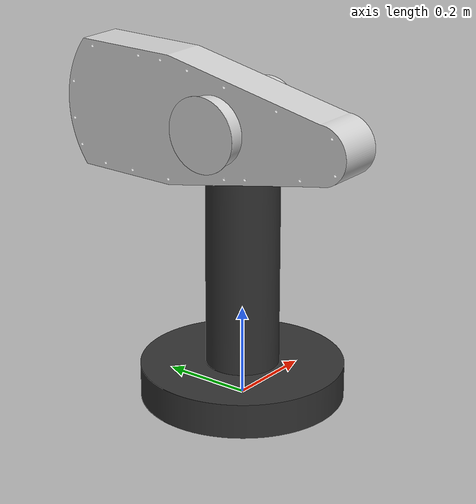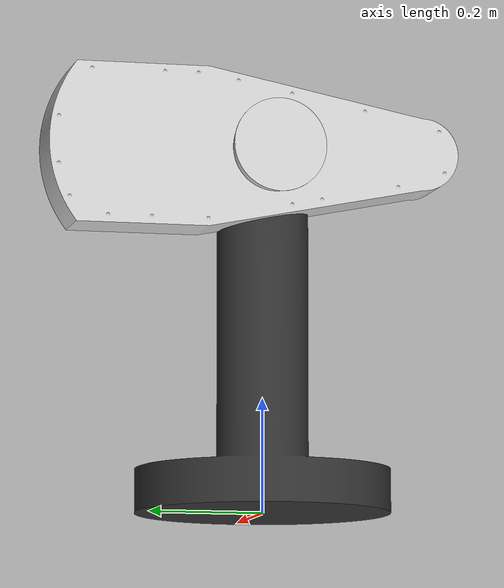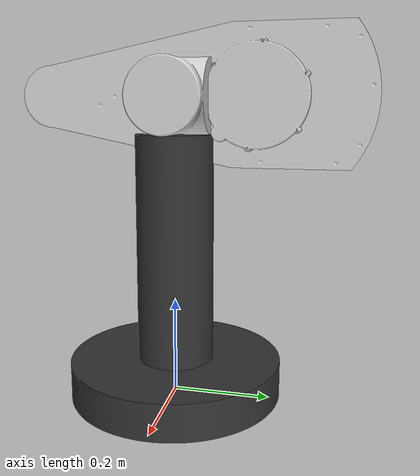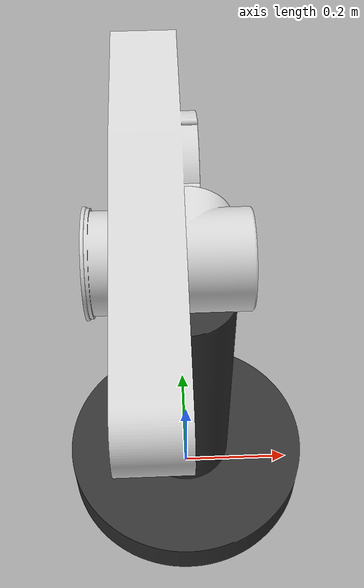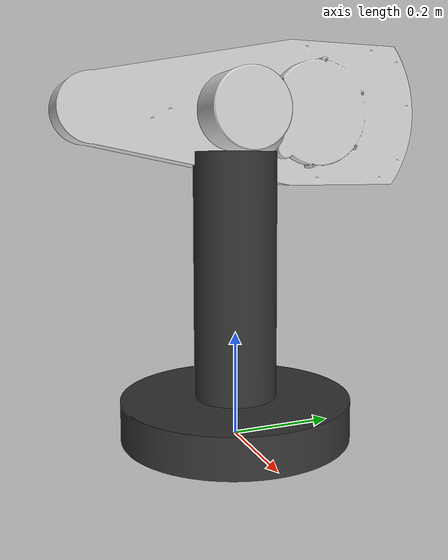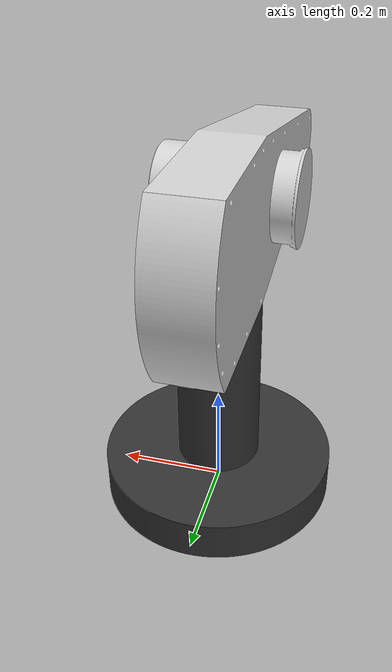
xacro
<?xml version="1.0"?>

<!-- UNIMATE Puma 560 Manipulator -->
<robot name="puma560" xmlns:xacro="http://www.ros.org/wiki/xacro">

  <!-- Constants for robot dimensions -->
  <xacro:property name="Pi" value="${3.1415926535897931}"/>

  <!-- Geometric parameters for base -->
  <xacro:property name="offset_z_base" value="${0.54864}"/>
  <xacro:property name="offset_z_link_1" value="${0.07493}"/>
  <xacro:property name="offset_y_link_2" value="${0.14224 + 0.0254}"/>

  <!-- Inertia parameters
  mass and center of mass (com)
  inertia_diagonal defined as [Ixx Iyy Izz]
  inertia_off_diagonal defined as [Ixy Ixz Iyz]
-->
<xacro:macro name="general_inertia_definition" params="mass com inertia_diagonal inertia_off_diagonal">
  <inertial>
    <origin xyz="${com[0]} ${com[1]} ${com[2]}" rpy="${com[3]} ${com[4]} ${com[5]}"/>
    <mass value="${mass}"/>
    <inertia
      ixx="${inertia_diagonal[0]}"  ixy="${inertia_off_diagonal[0]}" ixz="${inertia_off_diagonal[1]}"
      iyy="${inertia_diagonal[1]}"  iyz="${inertia_off_diagonal[2]}"
      izz="${inertia_diagonal[2]}"
      />
    </inertial>
  </xacro:macro>

  <!-- Import Rviz colors -->
  <xacro:include filename="$(find puma560_description)/urdf/materials.xacro" />

  <!-- Import all Gazebo-customization elements, including Gazebo colors -->
  <xacro:include filename="$(find puma560_description)/urdf/puma560.gazebo" />

  <!-- Link definitions -->
  <link name="world"/>

  <joint name="world" type="fixed">
    <parent link="world"/>
    <child link="puma_base"/>
    <origin xyz="0 0 ${offset_z_base}" rpy="0 0 0" />
    <axis xyz="0 0 1" />
  </joint>

  <link name="puma_base">

    <visual>
      <origin xyz="0 0 0" rpy="0 0 0" />
      <geometry>
        <mesh filename="package://puma560_description/meshes/puma_base.stl" />
      </geometry>
      <material name="grey"/>
    </visual>

    <collision>
      <origin xyz="0 0 0" rpy="0 0 0" />
      <geometry>
        <mesh filename="package://puma560_description/meshes/puma_base_collision.stl" />
      </geometry>
    </collision>

    <xacro:general_inertia_definition
      mass="42.62416"
      com="${[-0.000000, 0.021960, -0.356146, 0, 0, 0]}"
      inertia_diagonal="${[1.48565, 1.36144, 0.43392]}"
      inertia_off_diagonal="${[0, 0, 0.05984]}"
      />

    </link>

    <joint name="link_1" type="continuous">
      <parent link="puma_base"/>
      <child link="puma_link_1"/>
      <origin xyz="0 0 ${offset_z_link_1}" rpy="0 0 0" />
      <axis xyz="0 0 1" />
    </joint>

    <link name="puma_link_1">

      <visual>
        <origin xyz="0 0 0" rpy="0 0 0" />
        <geometry>
          <mesh filename="package://puma560_description/meshes/puma_link_1.stl" />
        </geometry>
        <material name="metal"/>
      </visual>

      <collision>
        <origin xyz="0 0 0" rpy="0 0 0" />
        <geometry>
          <mesh filename="package://puma560_description/meshes/puma_link_1_collision.stl" />
        </geometry>
      </collision>

    <xacro:general_inertia_definition
      mass="11.97216"
      com="${[-0.000000, 0.022503, -0.002794, 0, 0, 0]}"
      inertia_diagonal="${[0.07379, 0.03595, 0.07334]}"
      inertia_off_diagonal="${[0, 0, -0.00075]}"
      />

    </link>

    <joint name="link_2" type="continuous">
      <parent link="puma_link_1"/>
      <child link="puma_link_2"/>
      <origin xyz="0 ${offset_y_link_2} 0" rpy="${Pi/2} 0 0" />
      <axis xyz="0 0 1" />
    </joint>

    <link name="puma_link_2">

      <visual>
        <origin xyz="0 0 0" rpy="0 0 0" />
        <geometry>
          <mesh filename="package://puma560_description/meshes/puma_link_2.stl" />
        </geometry>
        <material name="metal"/>
      </visual>

      <collision>
        <origin xyz="0 0 0" rpy="0 0 0" />
        <geometry>
          <mesh filename="package://puma560_description/meshes/puma_link_2_collision.stl" />
        </geometry>
      </collision>

    <xacro:general_inertia_definition
      mass="11.97216"
      com="${[-0.000000, 0.022503, -0.002794, 0, 0, 0]}"
      inertia_diagonal="${[0.07379, 0.03595, 0.07334]}"
      inertia_off_diagonal="${[0, 0, -0.00075]}"
      />

    </link>

  </robot>

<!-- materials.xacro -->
<robot>

	<material name="black">
		<color rgba="0.0 0.0 0.0 1.0"/>
	</material>

	<material name="blue">
		<color rgba="0.0 0.0 0.8 1.0"/>
	</material>

	<material name="green">
		<color rgba="0.0 0.8 0.0 1.0"/>
	</material>

	<material name="grey">
		<color rgba="0.2 0.2 0.2 1.0"/>
	</material>

	<material name="red">
		<color rgba="0.8 0.0 0.0 1.0"/>
	</material>

	<material name="red_transparent">
		<color rgba="0.8 0.0 0.0 0.5"/>
	</material>

	<material name="white">
		<color rgba="1.0 1.0 1.0 1.0"/>
	</material>

	<material name="orange">
		<color rgba="${255/255} ${108/255} ${10/255} 1.0"/>
	</material>

	<material name="brown">
		<color rgba="${222/255} ${207/255} ${195/255} 1.0"/>
	</material>

	<material name="metal">
		<color rgba="${211/255} ${211/255} ${211/255} 1.0" />
	</material>

	<material name="wood">
		<color rgba="${205/255} ${133/255} ${63/255} 1.0" />
	</material>

</robot>
